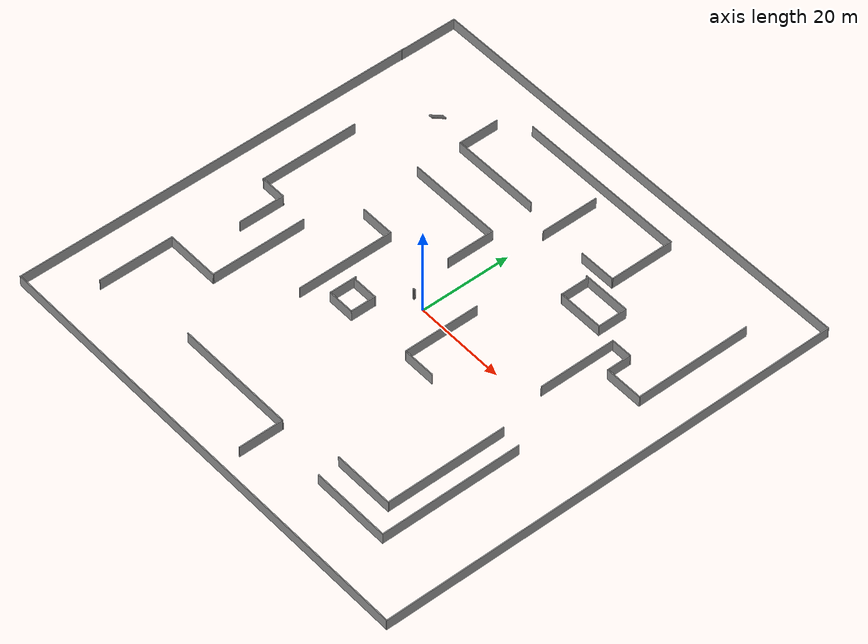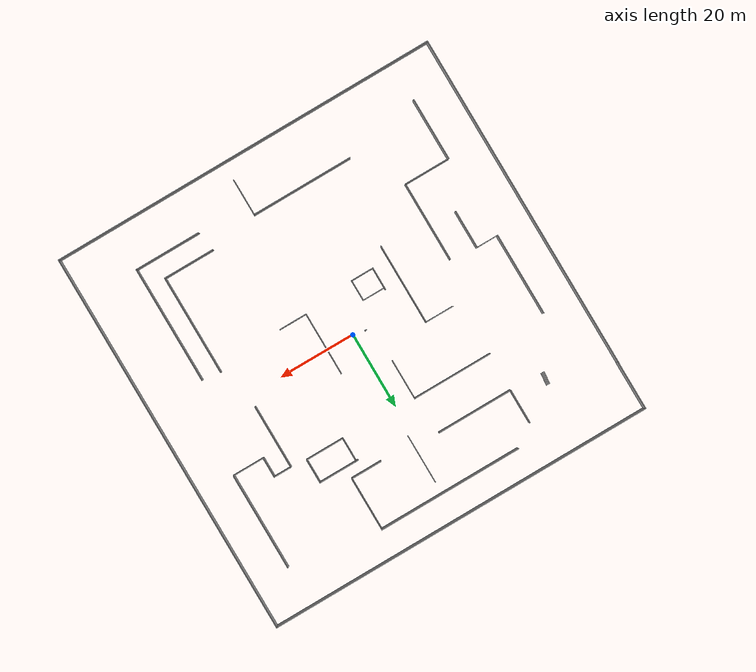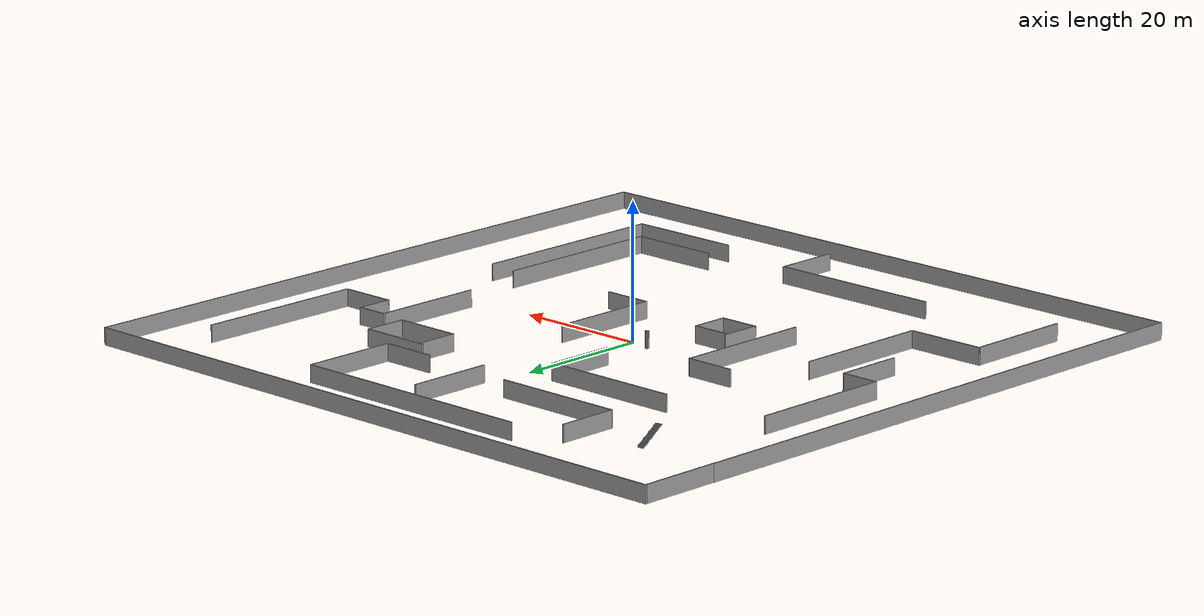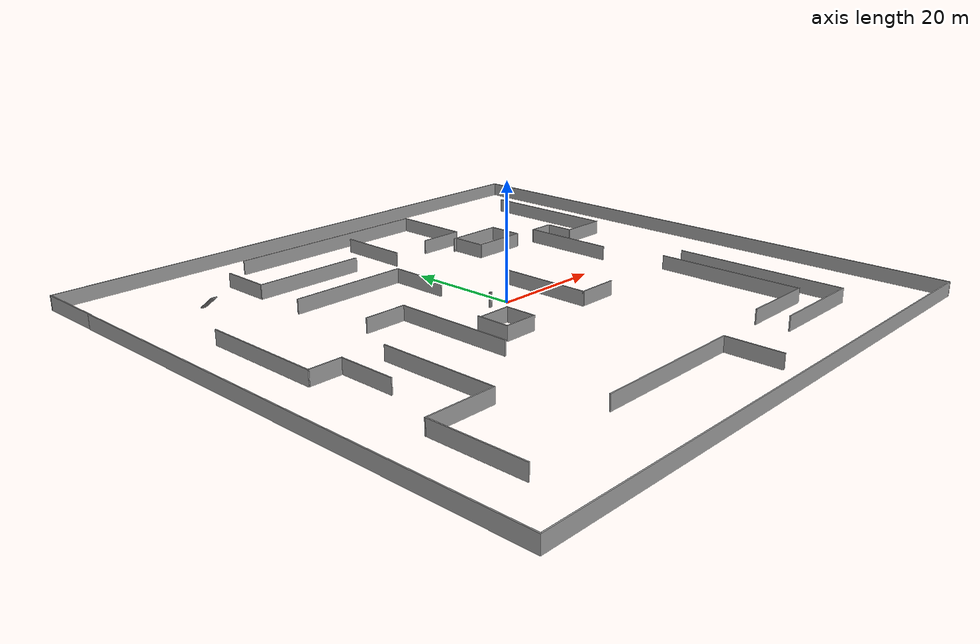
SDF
<?xml version='1.0'?>
<sdf version='1.4'>
  <model name='CustomWorld'>
    <link name='Stairs_0'>
      <visual name='Stairs_0_Visual_0'>
        <pose>-34.1146 34.008 0.083333 0 -0 0</pose>
        <geometry>
          <box>
            <size>1 0.233333 0.166667</size>
          </box>
        </geometry>
        <material>
          <script>
            <uri>file://media/materials/scripts/gazebo.material</uri>
            <name>Gazebo/Grey</name>
          </script>
        </material>
      </visual>
      <collision name='Stairs_0_Collision_0'>
        <geometry>
          <box>
            <size>1 0.233333 0.166667</size>
          </box>
        </geometry>
        <pose>-34.1146 34.008 0.083333 0 -0 0</pose>
      </collision>
      <visual name='Stairs_0_Visual_1'>
        <pose>-34.1146 33.7746 0.25 0 -0 0</pose>
        <geometry>
          <box>
            <size>1 0.233335 0.166668</size>
          </box>
        </geometry>
        <material>
          <script>
            <uri>file://media/materials/scripts/gazebo.material</uri>
            <name>Gazebo/Grey</name>
          </script>
        </material>
      </visual>
      <collision name='Stairs_0_Collision_1'>
        <geometry>
          <box>
            <size>1 0.233335 0.166668</size>
          </box>
        </geometry>
        <pose>-34.1146 33.7746 0.25 0 -0 0</pose>
      </collision>
      <visual name='Stairs_0_Visual_2'>
        <pose>-34.1146 33.5413 0.416667 0 -0 0</pose>
        <geometry>
          <box>
            <size>1 0.233335 0.166668</size>
          </box>
        </geometry>
        <material>
          <script>
            <uri>file://media/materials/scripts/gazebo.material</uri>
            <name>Gazebo/Grey</name>
          </script>
        </material>
      </visual>
      <collision name='Stairs_0_Collision_2'>
        <geometry>
          <box>
            <size>1 0.233335 0.166668</size>
          </box>
        </geometry>
        <pose>-34.1146 33.5413 0.416667 0 -0 0</pose>
      </collision>
      <visual name='Stairs_0_Visual_3'>
        <pose>-34.1146 33.308 0.583333 0 -0 0</pose>
        <geometry>
          <box>
            <size>1 0.233335 0.166668</size>
          </box>
        </geometry>
        <material>
          <script>
            <uri>file://media/materials/scripts/gazebo.material</uri>
            <name>Gazebo/Grey</name>
          </script>
        </material>
      </visual>
      <collision name='Stairs_0_Collision_3'>
        <geometry>
          <box>
            <size>1 0.233335 0.166668</size>
          </box>
        </geometry>
        <pose>-34.1146 33.308 0.583333 0 -0 0</pose>
      </collision>
      <visual name='Stairs_0_Visual_4'>
        <pose>-34.1146 33.0746 0.75 0 -0 0</pose>
        <geometry>
          <box>
            <size>1 0.233335 0.166668</size>
          </box>
        </geometry>
        <material>
          <script>
            <uri>file://media/materials/scripts/gazebo.material</uri>
            <name>Gazebo/Grey</name>
          </script>
        </material>
      </visual>
      <collision name='Stairs_0_Collision_4'>
        <geometry>
          <box>
            <size>1 0.233335 0.166668</size>
          </box>
        </geometry>
        <pose>-34.1146 33.0746 0.75 0 -0 0</pose>
      </collision>
      <visual name='Stairs_0_Visual_5'>
        <pose>-34.1146 32.8413 0.916667 0 -0 0</pose>
        <geometry>
          <box>
            <size>1 0.233335 0.166668</size>
          </box>
        </geometry>
        <material>
          <script>
            <uri>file://media/materials/scripts/gazebo.material</uri>
            <name>Gazebo/Grey</name>
          </script>
        </material>
      </visual>
      <collision name='Stairs_0_Collision_5'>
        <geometry>
          <box>
            <size>1 0.233335 0.166668</size>
          </box>
        </geometry>
        <pose>-34.1146 32.8413 0.916667 0 -0 0</pose>
      </collision>
      <visual name='Stairs_0_Visual_6'>
        <pose>-34.1146 32.608 1.08333 0 -0 0</pose>
        <geometry>
          <box>
            <size>1 0.233335 0.166668</size>
          </box>
        </geometry>
        <material>
          <script>
            <uri>file://media/materials/scripts/gazebo.material</uri>
            <name>Gazebo/Grey</name>
          </script>
        </material>
      </visual>
      <collision name='Stairs_0_Collision_6'>
        <geometry>
          <box>
            <size>1 0.233335 0.166668</size>
          </box>
        </geometry>
        <pose>-34.1146 32.608 1.08333 0 -0 0</pose>
      </collision>
      <visual name='Stairs_0_Visual_7'>
        <pose>-34.1146 32.3746 1.25 0 -0 0</pose>
        <geometry>
          <box>
            <size>1 0.233335 0.166668</size>
          </box>
        </geometry>
        <material>
          <script>
            <uri>file://media/materials/scripts/gazebo.material</uri>
            <name>Gazebo/Grey</name>
          </script>
        </material>
      </visual>
      <collision name='Stairs_0_Collision_7'>
        <geometry>
          <box>
            <size>1 0.233335 0.166668</size>
          </box>
        </geometry>
        <pose>-34.1146 32.3746 1.25 0 -0 0</pose>
      </collision>
      <visual name='Stairs_0_Visual_8'>
        <pose>-34.1146 32.1413 1.41667 0 -0 0</pose>
        <geometry>
          <box>
            <size>1 0.233335 0.166668</size>
          </box>
        </geometry>
        <material>
          <script>
            <uri>file://media/materials/scripts/gazebo.material</uri>
            <name>Gazebo/Grey</name>
          </script>
        </material>
      </visual>
      <collision name='Stairs_0_Collision_8'>
        <geometry>
          <box>
            <size>1 0.233335 0.166668</size>
          </box>
        </geometry>
        <pose>-34.1146 32.1413 1.41667 0 -0 0</pose>
      </collision>
      <visual name='Stairs_0_Visual_9'>
        <pose>-34.1146 31.908 1.58333 0 -0 0</pose>
        <geometry>
          <box>
            <size>1 0.233335 0.166668</size>
          </box>
        </geometry>
        <material>
          <script>
            <uri>file://media/materials/scripts/gazebo.material</uri>
            <name>Gazebo/Grey</name>
          </script>
        </material>
      </visual>
      <collision name='Stairs_0_Collision_9'>
        <geometry>
          <box>
            <size>1 0.233335 0.166668</size>
          </box>
        </geometry>
        <pose>-34.1146 31.908 1.58333 0 -0 0</pose>
      </collision>
      <visual name='Stairs_0_Visual_10'>
        <pose>-34.1146 31.6746 1.75 0 -0 0</pose>
        <geometry>
          <box>
            <size>1 0.233335 0.166668</size>
          </box>
        </geometry>
        <material>
          <script>
            <uri>file://media/materials/scripts/gazebo.material</uri>
            <name>Gazebo/Grey</name>
          </script>
        </material>
      </visual>
      <collision name='Stairs_0_Collision_10'>
        <geometry>
          <box>
            <size>1 0.233335 0.166668</size>
          </box>
        </geometry>
        <pose>-34.1146 31.6746 1.75 0 -0 0</pose>
      </collision>
      <visual name='Stairs_0_Visual_11'>
        <pose>-34.1146 31.4413 1.91667 0 -0 0</pose>
        <geometry>
          <box>
            <size>1 0.233335 0.166668</size>
          </box>
        </geometry>
        <material>
          <script>
            <uri>file://media/materials/scripts/gazebo.material</uri>
            <name>Gazebo/Grey</name>
          </script>
        </material>
      </visual>
      <collision name='Stairs_0_Collision_11'>
        <geometry>
          <box>
            <size>1 0.233335 0.166668</size>
          </box>
        </geometry>
        <pose>-34.1146 31.4413 1.91667 0 -0 0</pose>
      </collision>
      <visual name='Stairs_0_Visual_12'>
        <pose>-34.1146 31.208 2.08333 0 -0 0</pose>
        <geometry>
          <box>
            <size>1 0.233335 0.166668</size>
          </box>
        </geometry>
        <material>
          <script>
            <uri>file://media/materials/scripts/gazebo.material</uri>
            <name>Gazebo/Grey</name>
          </script>
        </material>
      </visual>
      <collision name='Stairs_0_Collision_12'>
        <geometry>
          <box>
            <size>1 0.233335 0.166668</size>
          </box>
        </geometry>
        <pose>-34.1146 31.208 2.08333 0 -0 0</pose>
      </collision>
      <visual name='Stairs_0_Visual_13'>
        <pose>-34.1146 30.9746 2.25 0 -0 0</pose>
        <geometry>
          <box>
            <size>1 0.233335 0.166668</size>
          </box>
        </geometry>
        <material>
          <script>
            <uri>file://media/materials/scripts/gazebo.material</uri>
            <name>Gazebo/Grey</name>
          </script>
        </material>
      </visual>
      <collision name='Stairs_0_Collision_13'>
        <geometry>
          <box>
            <size>1 0.233335 0.166668</size>
          </box>
        </geometry>
        <pose>-34.1146 30.9746 2.25 0 -0 0</pose>
      </collision>
      <visual name='Stairs_0_Visual_14'>
        <pose>-34.1146 30.7413 2.41667 0 -0 0</pose>
        <geometry>
          <box>
            <size>1 0.233335 0.166668</size>
          </box>
        </geometry>
        <material>
          <script>
            <uri>file://media/materials/scripts/gazebo.material</uri>
            <name>Gazebo/Grey</name>
          </script>
        </material>
      </visual>
      <collision name='Stairs_0_Collision_14'>
        <geometry>
          <box>
            <size>1 0.233335 0.166668</size>
          </box>
        </geometry>
        <pose>-34.1146 30.7413 2.41667 0 -0 0</pose>
      </collision>
    </link>
    <link name='Wall_13'>
      <collision name='Wall_13_Collision'>
        <geometry>
          <box>
            <size>89.3438 0.2 2.5</size>
          </box>
        </geometry>
        <pose>0 0 1.25 0 -0 0</pose>
      </collision>
      <visual name='Wall_13_Visual'>
        <pose>0 0 1.25 0 -0 0</pose>
        <geometry>
          <box>
            <size>89.3438 0.2 2.5</size>
          </box>
        </geometry>
        <material>
          <script>
            <uri>file://media/materials/scripts/gazebo.material</uri>
            <name>Gazebo/Grey</name>
          </script>
        </material>
      </visual>
      <velocity_decay>
        <linear>0</linear>
        <angular>0</angular>
      </velocity_decay>
      <pose>-50.8449 -6.378 0 0 0 -1.5708</pose>
    </link>
    <link name='Wall_14'>
      <collision name='Wall_14_Collision'>
        <geometry>
          <box>
            <size>102.055 0.2 2.5</size>
          </box>
        </geometry>
        <pose>0 0 1.25 0 -0 0</pose>
      </collision>
      <visual name='Wall_14_Visual'>
        <pose>0 0 1.25 0 -0 0</pose>
        <geometry>
          <box>
            <size>102.055 0.2 2.5</size>
          </box>
        </geometry>
        <material>
          <script>
            <uri>file://media/materials/scripts/gazebo.material</uri>
            <name>Gazebo/Grey</name>
          </script>
        </material>
      </visual>
      <velocity_decay>
        <linear>0</linear>
        <angular>0</angular>
      </velocity_decay>
      <pose>0.082804 -50.9499 0 0 -0 0</pose>
    </link>
    <link name='Wall_15'>
      <collision name='Wall_15_Collision'>
        <geometry>
          <box>
            <size>101.673 0.2 2.5</size>
          </box>
        </geometry>
        <pose>0 0 1.25 0 -0 0</pose>
      </collision>
      <visual name='Wall_15_Visual'>
        <pose>0 0 1.25 0 -0 0</pose>
        <geometry>
          <box>
            <size>101.673 0.2 2.5</size>
          </box>
        </geometry>
        <material>
          <script>
            <uri>file://media/materials/scripts/gazebo.material</uri>
            <name>Gazebo/Grey</name>
          </script>
        </material>
      </visual>
      <velocity_decay>
        <linear>0</linear>
        <angular>0</angular>
      </velocity_decay>
      <pose>51.0105 -0.213646 0 0 -0 1.5708</pose>
    </link>
    <link name='Wall_16'>
      <collision name='Wall_16_Collision'>
        <geometry>
          <box>
            <size>102 0.2 2.5</size>
          </box>
        </geometry>
        <pose>0 0 1.25 0 -0 0</pose>
      </collision>
      <visual name='Wall_16_Visual'>
        <pose>0 0 1.25 0 -0 0</pose>
        <geometry>
          <box>
            <size>102 0.2 2.5</size>
          </box>
        </geometry>
        <material>
          <script>
            <uri>file://media/materials/scripts/gazebo.material</uri>
            <name>Gazebo/Grey</name>
          </script>
        </material>
      </visual>
      <velocity_decay>
        <linear>0</linear>
        <angular>0</angular>
      </velocity_decay>
      <pose>0.110507 50.5226 0 0 -0 3.14159</pose>
    </link>
    <link name='Wall_17'>
      <collision name='Wall_17_Collision'>
        <geometry>
          <box>
            <size>12.9537 0.2 2.5</size>
          </box>
        </geometry>
        <pose>0 0 1.25 0 -0 0</pose>
      </collision>
      <visual name='Wall_17_Visual'>
        <pose>0 0 1.25 0 -0 0</pose>
        <geometry>
          <box>
            <size>12.9537 0.2 2.5</size>
          </box>
        </geometry>
        <material>
          <script>
            <uri>file://media/materials/scripts/gazebo.material</uri>
            <name>Gazebo/Grey</name>
          </script>
        </material>
      </visual>
      <velocity_decay>
        <linear>0</linear>
        <angular>0</angular>
      </velocity_decay>
      <pose>-50.7895 44.1457 0 0 0 -1.5708</pose>
    </link>
    <link name='Wall_19'>
      <collision name='Wall_19_Collision'>
        <geometry>
          <box>
            <size>9.07435 0.2 2.5</size>
          </box>
        </geometry>
        <pose>0 0 1.25 0 -0 0</pose>
      </collision>
      <visual name='Wall_19_Visual'>
        <pose>0 0 1.25 0 -0 0</pose>
        <geometry>
          <box>
            <size>9.07435 0.2 2.5</size>
          </box>
        </geometry>
        <material>
          <script>
            <uri>file://media/materials/scripts/gazebo.material</uri>
            <name>Gazebo/Grey</name>
          </script>
        </material>
      </visual>
      <velocity_decay>
        <linear>0</linear>
        <angular>0</angular>
      </velocity_decay>
      <pose>-25.4928 34.9108 0 0 0 -1.5708</pose>
    </link>
    <link name='Wall_20'>
      <collision name='Wall_20_Collision'>
        <geometry>
          <box>
            <size>19.8967 0.2 2.5</size>
          </box>
        </geometry>
        <pose>0 0 1.25 0 -0 0</pose>
      </collision>
      <visual name='Wall_20_Visual'>
        <pose>0 0 1.25 0 -0 0</pose>
        <geometry>
          <box>
            <size>19.8967 0.2 2.5</size>
          </box>
        </geometry>
        <material>
          <script>
            <uri>file://media/materials/scripts/gazebo.material</uri>
            <name>Gazebo/Grey</name>
          </script>
        </material>
      </visual>
      <velocity_decay>
        <linear>0</linear>
        <angular>0</angular>
      </velocity_decay>
      <pose>-15.6445 30.4736 0 0 -0 0</pose>
    </link>
    <link name='Wall_22'>
      <collision name='Wall_22_Collision'>
        <geometry>
          <box>
            <size>20.979 0.2 2.5</size>
          </box>
        </geometry>
        <pose>0 0 1.25 0 -0 0</pose>
      </collision>
      <visual name='Wall_22_Visual'>
        <pose>0 0 1.25 0 -0 0</pose>
        <geometry>
          <box>
            <size>20.979 0.2 2.5</size>
          </box>
        </geometry>
        <material>
          <script>
            <uri>file://media/materials/scripts/gazebo.material</uri>
            <name>Gazebo/Grey</name>
          </script>
        </material>
      </visual>
      <velocity_decay>
        <linear>0</linear>
        <angular>0</angular>
      </velocity_decay>
      <pose>-15.3198 20.5171 0 0 -0 0</pose>
    </link>
    <link name='Wall_23'>
      <collision name='Wall_23_Collision'>
        <geometry>
          <box>
            <size>10.5895 0.2 2.5</size>
          </box>
        </geometry>
        <pose>0 0 1.25 0 -0 0</pose>
      </collision>
      <visual name='Wall_23_Visual'>
        <pose>0 0 1.25 0 -0 0</pose>
        <geometry>
          <box>
            <size>10.5895 0.2 2.5</size>
          </box>
        </geometry>
        <material>
          <script>
            <uri>file://media/materials/scripts/gazebo.material</uri>
            <name>Gazebo/Grey</name>
          </script>
        </material>
      </visual>
      <velocity_decay>
        <linear>0</linear>
        <angular>0</angular>
      </velocity_decay>
      <pose>-4.93032 15.3223 0 0 0 -1.5708</pose>
    </link>
    <link name='Wall_25'>
      <collision name='Wall_25_Collision'>
        <geometry>
          <box>
            <size>0.349931 0.2 2.5</size>
          </box>
        </geometry>
        <pose>0 0 1.25 0 -0 0</pose>
      </collision>
      <visual name='Wall_25_Visual'>
        <pose>0 0 1.25 0 -0 0</pose>
        <geometry>
          <box>
            <size>0.349931 0.2 2.5</size>
          </box>
        </geometry>
        <material>
          <script>
            <uri>file://media/materials/scripts/gazebo.material</uri>
            <name>Gazebo/Grey</name>
          </script>
        </material>
      </visual>
      <velocity_decay>
        <linear>0</linear>
        <angular>0</angular>
      </velocity_decay>
      <pose>-3.33778 0.644917 0 0 0 -1.5708</pose>
    </link>
    <link name='Wall_26'>
      <collision name='Wall_26_Collision'>
        <geometry>
          <box>
            <size>0.499863 0.2 2.5</size>
          </box>
        </geometry>
        <pose>0 0 1.25 0 -0 0</pose>
      </collision>
      <visual name='Wall_26_Visual'>
        <pose>0 0 1.25 0 -0 0</pose>
        <geometry>
          <box>
            <size>0.499863 0.2 2.5</size>
          </box>
        </geometry>
        <material>
          <script>
            <uri>file://media/materials/scripts/gazebo.material</uri>
            <name>Gazebo/Grey</name>
          </script>
        </material>
      </visual>
      <velocity_decay>
        <linear>0</linear>
        <angular>0</angular>
      </velocity_decay>
      <pose>-3.18784 0.569952 0 0 -0 0</pose>
    </link>
    <link name='Wall_27'>
      <collision name='Wall_27_Collision'>
        <geometry>
          <box>
            <size>0.35116 0.2 2.5</size>
          </box>
        </geometry>
        <pose>0 0 1.25 0 -0 0</pose>
      </collision>
      <visual name='Wall_27_Visual'>
        <pose>0 0 1.25 0 -0 0</pose>
        <geometry>
          <box>
            <size>0.35116 0.2 2.5</size>
          </box>
        </geometry>
        <material>
          <script>
            <uri>file://media/materials/scripts/gazebo.material</uri>
            <name>Gazebo/Grey</name>
          </script>
        </material>
      </visual>
      <velocity_decay>
        <linear>0</linear>
        <angular>0</angular>
      </velocity_decay>
      <pose>-3.03791 0.645532 0 0 -0 1.5708</pose>
    </link>
    <link name='Wall_28'>
      <collision name='Wall_28_Collision'>
        <geometry>
          <box>
            <size>0.499865 0.2 2.5</size>
          </box>
        </geometry>
        <pose>0 0 1.25 0 -0 0</pose>
      </collision>
      <visual name='Wall_28_Visual'>
        <pose>0 0 1.25 0 -0 0</pose>
        <geometry>
          <box>
            <size>0.499865 0.2 2.5</size>
          </box>
        </geometry>
        <material>
          <script>
            <uri>file://media/materials/scripts/gazebo.material</uri>
            <name>Gazebo/Grey</name>
          </script>
        </material>
      </visual>
      <velocity_decay>
        <linear>0</linear>
        <angular>0</angular>
      </velocity_decay>
      <pose>-3.18784 0.720497 0 0 0 -3.13749</pose>
    </link>
    <link name='Wall_30'>
      <collision name='Wall_30_Collision'>
        <geometry>
          <box>
            <size>6.47698 0.2 2.5</size>
          </box>
        </geometry>
        <pose>0 0 1.25 0 -0 0</pose>
      </collision>
      <visual name='Wall_30_Visual'>
        <pose>0 0 1.25 0 -0 0</pose>
        <geometry>
          <box>
            <size>6.47698 0.2 2.5</size>
          </box>
        </geometry>
        <material>
          <script>
            <uri>file://media/materials/scripts/gazebo.material</uri>
            <name>Gazebo/Grey</name>
          </script>
        </material>
      </visual>
      <velocity_decay>
        <linear>0</linear>
        <angular>0</angular>
      </velocity_decay>
      <pose>14.6645 23.0829 0 0 0 -1.5708</pose>
    </link>
    <link name='Wall_31'>
      <collision name='Wall_31_Collision'>
        <geometry>
          <box>
            <size>10.1566 0.2 2.5</size>
          </box>
        </geometry>
        <pose>0 0 1.25 0 -0 0</pose>
      </collision>
      <visual name='Wall_31_Visual'>
        <pose>0 0 1.25 0 -0 0</pose>
        <geometry>
          <box>
            <size>10.1566 0.2 2.5</size>
          </box>
        </geometry>
        <material>
          <script>
            <uri>file://media/materials/scripts/gazebo.material</uri>
            <name>Gazebo/Grey</name>
          </script>
        </material>
      </visual>
      <velocity_decay>
        <linear>0</linear>
        <angular>0</angular>
      </velocity_decay>
      <pose>19.6428 19.9445 0 0 -0 0</pose>
    </link>
    <link name='Wall_32'>
      <collision name='Wall_32_Collision'>
        <geometry>
          <box>
            <size>6.47698 0.2 2.5</size>
          </box>
        </geometry>
        <pose>0 0 1.25 0 -0 0</pose>
      </collision>
      <visual name='Wall_32_Visual'>
        <pose>0 0 1.25 0 -0 0</pose>
        <geometry>
          <box>
            <size>6.47698 0.2 2.5</size>
          </box>
        </geometry>
        <material>
          <script>
            <uri>file://media/materials/scripts/gazebo.material</uri>
            <name>Gazebo/Grey</name>
          </script>
        </material>
      </visual>
      <velocity_decay>
        <linear>0</linear>
        <angular>0</angular>
      </velocity_decay>
      <pose>24.6211 23.0829 0 0 -0 1.5708</pose>
    </link>
    <link name='Wall_33'>
      <collision name='Wall_33_Collision'>
        <geometry>
          <box>
            <size>10.5895 0.2 2.5</size>
          </box>
        </geometry>
        <pose>0 0 1.25 0 -0 0</pose>
      </collision>
      <visual name='Wall_33_Visual'>
        <pose>0 0 1.25 0 -0 0</pose>
        <geometry>
          <box>
            <size>10.5895 0.2 2.5</size>
          </box>
        </geometry>
        <material>
          <script>
            <uri>file://media/materials/scripts/gazebo.material</uri>
            <name>Gazebo/Grey</name>
          </script>
        </material>
      </visual>
      <velocity_decay>
        <linear>0</linear>
        <angular>0</angular>
      </velocity_decay>
      <pose>19.4263 26.2214 0 0 -0 3.14159</pose>
    </link>
    <link name='Wall_35'>
      <collision name='Wall_35_Collision'>
        <geometry>
          <box>
            <size>20.979 0.2 2.5</size>
          </box>
        </geometry>
        <pose>0 0 1.25 0 -0 0</pose>
      </collision>
      <visual name='Wall_35_Visual'>
        <pose>0 0 1.25 0 -0 0</pose>
        <geometry>
          <box>
            <size>20.979 0.2 2.5</size>
          </box>
        </geometry>
        <material>
          <script>
            <uri>file://media/materials/scripts/gazebo.material</uri>
            <name>Gazebo/Grey</name>
          </script>
        </material>
      </visual>
      <velocity_decay>
        <linear>0</linear>
        <angular>0</angular>
      </velocity_decay>
      <pose>-29.0579 -14.0378 0 0 0 -1.5708</pose>
    </link>
    <link name='Wall_36'>
      <collision name='Wall_36_Collision'>
        <geometry>
          <box>
            <size>12.1046 0.2 2.5</size>
          </box>
        </geometry>
        <pose>0 0 1.25 0 -0 0</pose>
      </collision>
      <visual name='Wall_36_Visual'>
        <pose>0 0 1.25 0 -0 0</pose>
        <geometry>
          <box>
            <size>12.1046 0.2 2.5</size>
          </box>
        </geometry>
        <material>
          <script>
            <uri>file://media/materials/scripts/gazebo.material</uri>
            <name>Gazebo/Grey</name>
          </script>
        </material>
      </visual>
      <velocity_decay>
        <linear>0</linear>
        <angular>0</angular>
      </velocity_decay>
      <pose>-35.0102 -24.4273 0 0 -0 3.14159</pose>
    </link>
    <link name='Wall_37'>
      <collision name='Wall_37_Collision'>
        <geometry>
          <box>
            <size>16.4336 0.2 2.5</size>
          </box>
        </geometry>
        <pose>0 0 1.25 0 -0 0</pose>
      </collision>
      <visual name='Wall_37_Visual'>
        <pose>0 0 1.25 0 -0 0</pose>
        <geometry>
          <box>
            <size>16.4336 0.2 2.5</size>
          </box>
        </geometry>
        <material>
          <script>
            <uri>file://media/materials/scripts/gazebo.material</uri>
            <name>Gazebo/Grey</name>
          </script>
        </material>
      </visual>
      <velocity_decay>
        <linear>0</linear>
        <angular>0</angular>
      </velocity_decay>
      <pose>-40.9625 -32.5441 0 0 0 -1.5708</pose>
    </link>
    <link name='Wall_39'>
      <collision name='Wall_39_Collision'>
        <geometry>
          <box>
            <size>21.6283 0.2 2.5</size>
          </box>
        </geometry>
        <pose>0 0 1.25 0 -0 0</pose>
      </collision>
      <visual name='Wall_39_Visual'>
        <pose>0 0 1.25 0 -0 0</pose>
        <geometry>
          <box>
            <size>21.6283 0.2 2.5</size>
          </box>
        </geometry>
        <material>
          <script>
            <uri>file://media/materials/scripts/gazebo.material</uri>
            <name>Gazebo/Grey</name>
          </script>
        </material>
      </visual>
      <velocity_decay>
        <linear>0</linear>
        <angular>0</angular>
      </velocity_decay>
      <pose>-41.6118 7.93162 0 0 0 -1.5708</pose>
    </link>
    <link name='Wall_40'>
      <collision name='Wall_40_Collision'>
        <geometry>
          <box>
            <size>5.82763 0.2 2.5</size>
          </box>
        </geometry>
        <pose>0 0 1.25 0 -0 0</pose>
      </collision>
      <visual name='Wall_40_Visual'>
        <pose>0 0 1.25 0 -0 0</pose>
        <geometry>
          <box>
            <size>5.82763 0.2 2.5</size>
          </box>
        </geometry>
        <material>
          <script>
            <uri>file://media/materials/scripts/gazebo.material</uri>
            <name>Gazebo/Grey</name>
          </script>
        </material>
      </visual>
      <velocity_decay>
        <linear>0</linear>
        <angular>0</angular>
      </velocity_decay>
      <pose>-38.798 -2.78253 0 0 -0 0</pose>
    </link>
    <link name='Wall_41'>
      <collision name='Wall_41_Collision'>
        <geometry>
          <box>
            <size>10.1566 0.2 2.5</size>
          </box>
        </geometry>
        <pose>0 0 1.25 0 -0 0</pose>
      </collision>
      <visual name='Wall_41_Visual'>
        <pose>0 0 1.25 0 -0 0</pose>
        <geometry>
          <box>
            <size>10.1566 0.2 2.5</size>
          </box>
        </geometry>
        <material>
          <script>
            <uri>file://media/materials/scripts/gazebo.material</uri>
            <name>Gazebo/Grey</name>
          </script>
        </material>
      </visual>
      <velocity_decay>
        <linear>0</linear>
        <angular>0</angular>
      </velocity_decay>
      <pose>-35.9842 -7.76082 0 0 0 -1.5708</pose>
    </link>
    <link name='Wall_43'>
      <collision name='Wall_43_Collision'>
        <geometry>
          <box>
            <size>25.5244 0.2 2.5</size>
          </box>
        </geometry>
        <pose>0 0 1.25 0 -0 0</pose>
      </collision>
      <visual name='Wall_43_Visual'>
        <pose>0 0 1.25 0 -0 0</pose>
        <geometry>
          <box>
            <size>25.5244 0.2 2.5</size>
          </box>
        </geometry>
        <material>
          <script>
            <uri>file://media/materials/scripts/gazebo.material</uri>
            <name>Gazebo/Grey</name>
          </script>
        </material>
      </visual>
      <velocity_decay>
        <linear>0</linear>
        <angular>0</angular>
      </velocity_decay>
      <pose>41.504 26.979 0 0 0 -1.5708</pose>
    </link>
    <link name='Wall_44'>
      <collision name='Wall_44_Collision'>
        <geometry>
          <box>
            <size>8.425 0.2 2.5</size>
          </box>
        </geometry>
        <pose>0 0 1.25 0 -0 0</pose>
      </collision>
      <visual name='Wall_44_Visual'>
        <pose>0 0 1.25 0 -0 0</pose>
        <geometry>
          <box>
            <size>8.425 0.2 2.5</size>
          </box>
        </geometry>
        <material>
          <script>
            <uri>file://media/materials/scripts/gazebo.material</uri>
            <name>Gazebo/Grey</name>
          </script>
        </material>
      </visual>
      <velocity_decay>
        <linear>0</linear>
        <angular>0</angular>
      </velocity_decay>
      <pose>37.3915 14.3168 0 0 -0 3.14159</pose>
    </link>
    <link name='Wall_45'>
      <collision name='Wall_45_Collision'>
        <geometry>
          <box>
            <size>5.39474 0.2 2.5</size>
          </box>
        </geometry>
        <pose>0 0 1.25 0 -0 0</pose>
      </collision>
      <visual name='Wall_45_Visual'>
        <pose>0 0 1.25 0 -0 0</pose>
        <geometry>
          <box>
            <size>5.39474 0.2 2.5</size>
          </box>
        </geometry>
        <material>
          <script>
            <uri>file://media/materials/scripts/gazebo.material</uri>
            <name>Gazebo/Grey</name>
          </script>
        </material>
      </visual>
      <velocity_decay>
        <linear>0</linear>
        <angular>0</angular>
      </velocity_decay>
      <pose>33.279 16.9142 0 0 -0 1.5708</pose>
    </link>
    <link name='Wall_46'>
      <collision name='Wall_46_Collision'>
        <geometry>
          <box>
            <size>4.7454 0.2 2.5</size>
          </box>
        </geometry>
        <pose>0 0 1.25 0 -0 0</pose>
      </collision>
      <visual name='Wall_46_Visual'>
        <pose>0 0 1.25 0 -0 0</pose>
        <geometry>
          <box>
            <size>4.7454 0.2 2.5</size>
          </box>
        </geometry>
        <material>
          <script>
            <uri>file://media/materials/scripts/gazebo.material</uri>
            <name>Gazebo/Grey</name>
          </script>
        </material>
      </visual>
      <velocity_decay>
        <linear>0</linear>
        <angular>0</angular>
      </velocity_decay>
      <pose>31.0063 19.5116 0 0 -0 3.14159</pose>
    </link>
    <link name='Wall_47'>
      <collision name='Wall_47_Collision'>
        <geometry>
          <box>
            <size>16.8665 0.2 2.5</size>
          </box>
        </geometry>
        <pose>0 0 1.25 0 -0 0</pose>
      </collision>
      <visual name='Wall_47_Visual'>
        <pose>0 0 1.25 0 -0 0</pose>
        <geometry>
          <box>
            <size>16.8665 0.2 2.5</size>
          </box>
        </geometry>
        <material>
          <script>
            <uri>file://media/materials/scripts/gazebo.material</uri>
            <name>Gazebo/Grey</name>
          </script>
        </material>
      </visual>
      <velocity_decay>
        <linear>0</linear>
        <angular>0</angular>
      </velocity_decay>
      <pose>28.7336 11.1783 0 0 0 -1.5708</pose>
    </link>
    <link name='Wall_49'>
      <collision name='Wall_49_Collision'>
        <geometry>
          <box>
            <size>37.8619 0.2 2.5</size>
          </box>
        </geometry>
        <pose>0 0 1.25 0 -0 0</pose>
      </collision>
      <visual name='Wall_49_Visual'>
        <pose>0 0 1.25 0 -0 0</pose>
        <geometry>
          <box>
            <size>37.8619 0.2 2.5</size>
          </box>
        </geometry>
        <material>
          <script>
            <uri>file://media/materials/scripts/gazebo.material</uri>
            <name>Gazebo/Grey</name>
          </script>
        </material>
      </visual>
      <velocity_decay>
        <linear>0</linear>
        <angular>0</angular>
      </velocity_decay>
      <pose>-1.13617 43.3208 0 0 -0 0</pose>
    </link>
    <link name='Wall_50'>
      <collision name='Wall_50_Collision'>
        <geometry>
          <box>
            <size>14.2691 0.2 2.5</size>
          </box>
        </geometry>
        <pose>0 0 1.25 0 -0 0</pose>
      </collision>
      <visual name='Wall_50_Visual'>
        <pose>0 0 1.25 0 -0 0</pose>
        <geometry>
          <box>
            <size>14.2691 0.2 2.5</size>
          </box>
        </geometry>
        <material>
          <script>
            <uri>file://media/materials/scripts/gazebo.material</uri>
            <name>Gazebo/Grey</name>
          </script>
        </material>
      </visual>
      <velocity_decay>
        <linear>0</linear>
        <angular>0</angular>
      </velocity_decay>
      <pose>17.6948 36.2862 0 0 0 -1.5708</pose>
    </link>
    <link name='Wall_51'>
      <collision name='Wall_51_Collision'>
        <geometry>
          <box>
            <size>8.20856 0.2 2.5</size>
          </box>
        </geometry>
        <pose>0 0 1.25 0 -0 0</pose>
      </collision>
      <visual name='Wall_51_Visual'>
        <pose>0 0 1.25 0 -0 0</pose>
        <geometry>
          <box>
            <size>8.20856 0.2 2.5</size>
          </box>
        </geometry>
        <material>
          <script>
            <uri>file://media/materials/scripts/gazebo.material</uri>
            <name>Gazebo/Grey</name>
          </script>
        </material>
      </visual>
      <velocity_decay>
        <linear>0</linear>
        <angular>0</angular>
      </velocity_decay>
      <pose>13.6905 29.2517 0 0 -0 3.14159</pose>
    </link>
    <link name='Wall_53'>
      <collision name='Wall_53_Collision'>
        <geometry>
          <box>
            <size>12.754 0.2 2.5</size>
          </box>
        </geometry>
        <pose>0 0 1.25 0 -0 0</pose>
      </collision>
      <visual name='Wall_53_Visual'>
        <pose>0 0 1.25 0 -0 0</pose>
        <geometry>
          <box>
            <size>12.754 0.2 2.5</size>
          </box>
        </geometry>
        <material>
          <script>
            <uri>file://media/materials/scripts/gazebo.material</uri>
            <name>Gazebo/Grey</name>
          </script>
        </material>
      </visual>
      <velocity_decay>
        <linear>0</linear>
        <angular>0</angular>
      </velocity_decay>
      <pose>1.02831 33.7971 0 0 0 -1.5708</pose>
    </link>
    <link name='Wall_55'>
      <collision name='Wall_55_Collision'>
        <geometry>
          <box>
            <size>6.04408 0.2 2.5</size>
          </box>
        </geometry>
        <pose>0 0 1.25 0 -0 0</pose>
      </collision>
      <visual name='Wall_55_Visual'>
        <pose>0 0 1.25 0 -0 0</pose>
        <geometry>
          <box>
            <size>6.04408 0.2 2.5</size>
          </box>
        </geometry>
        <material>
          <script>
            <uri>file://media/materials/scripts/gazebo.material</uri>
            <name>Gazebo/Grey</name>
          </script>
        </material>
      </visual>
      <velocity_decay>
        <linear>0</linear>
        <angular>0</angular>
      </velocity_decay>
      <pose>-12.175 -8.30194 0 0 0 -1.5708</pose>
    </link>
    <link name='Wall_56'>
      <collision name='Wall_56_Collision'>
        <geometry>
          <box>
            <size>6.04408 0.2 2.5</size>
          </box>
        </geometry>
        <pose>0 0 1.25 0 -0 0</pose>
      </collision>
      <visual name='Wall_56_Visual'>
        <pose>0 0 1.25 0 -0 0</pose>
        <geometry>
          <box>
            <size>6.04408 0.2 2.5</size>
          </box>
        </geometry>
        <material>
          <script>
            <uri>file://media/materials/scripts/gazebo.material</uri>
            <name>Gazebo/Grey</name>
          </script>
        </material>
      </visual>
      <velocity_decay>
        <linear>0</linear>
        <angular>0</angular>
      </velocity_decay>
      <pose>-9.25295 -11.224 0 0 -0 0</pose>
    </link>
    <link name='Wall_57'>
      <collision name='Wall_57_Collision'>
        <geometry>
          <box>
            <size>5.61119 0.2 2.5</size>
          </box>
        </geometry>
        <pose>0 0 1.25 0 -0 0</pose>
      </collision>
      <visual name='Wall_57_Visual'>
        <pose>0 0 1.25 0 -0 0</pose>
        <geometry>
          <box>
            <size>5.61119 0.2 2.5</size>
          </box>
        </geometry>
        <material>
          <script>
            <uri>file://media/materials/scripts/gazebo.material</uri>
            <name>Gazebo/Grey</name>
          </script>
        </material>
      </visual>
      <velocity_decay>
        <linear>0</linear>
        <angular>0</angular>
      </velocity_decay>
      <pose>-6.33091 -8.51838 0 0 -0 1.5708</pose>
    </link>
    <link name='Wall_58'>
      <collision name='Wall_58_Collision'>
        <geometry>
          <box>
            <size>5.82763 0.2 2.5</size>
          </box>
        </geometry>
        <pose>0 0 1.25 0 -0 0</pose>
      </collision>
      <visual name='Wall_58_Visual'>
        <pose>0 0 1.25 0 -0 0</pose>
        <geometry>
          <box>
            <size>5.82763 0.2 2.5</size>
          </box>
        </geometry>
        <material>
          <script>
            <uri>file://media/materials/scripts/gazebo.material</uri>
            <name>Gazebo/Grey</name>
          </script>
        </material>
      </visual>
      <velocity_decay>
        <linear>0</linear>
        <angular>0</angular>
      </velocity_decay>
      <pose>-9.14472 -5.81279 0 0 -0 3.14159</pose>
    </link>
    <link name='Wall_60'>
      <collision name='Wall_60_Collision'>
        <geometry>
          <box>
            <size>26.1737 0.2 2.5</size>
          </box>
        </geometry>
        <pose>0 0 1.25 0 -0 0</pose>
      </collision>
      <visual name='Wall_60_Visual'>
        <pose>0 0 1.25 0 -0 0</pose>
        <geometry>
          <box>
            <size>26.1737 0.2 2.5</size>
          </box>
        </geometry>
        <material>
          <script>
            <uri>file://media/materials/scripts/gazebo.material</uri>
            <name>Gazebo/Grey</name>
          </script>
        </material>
      </visual>
      <velocity_decay>
        <linear>0</linear>
        <angular>0</angular>
      </velocity_decay>
      <pose>31.5474 -21.397 0 0 0 -1.5708</pose>
    </link>
    <link name='Wall_61'>
      <collision name='Wall_61_Collision'>
        <geometry>
          <box>
            <size>13.4033 0.2 2.5</size>
          </box>
        </geometry>
        <pose>0 0 1.25 0 -0 0</pose>
      </collision>
      <visual name='Wall_61_Visual'>
        <pose>0 0 1.25 0 -0 0</pose>
        <geometry>
          <box>
            <size>13.4033 0.2 2.5</size>
          </box>
        </geometry>
        <material>
          <script>
            <uri>file://media/materials/scripts/gazebo.material</uri>
            <name>Gazebo/Grey</name>
          </script>
        </material>
      </visual>
      <velocity_decay>
        <linear>0</linear>
        <angular>0</angular>
      </velocity_decay>
      <pose>24.9458 -34.3839 0 0 -0 3.14159</pose>
    </link>
    <link name='Wall_63'>
      <collision name='Wall_63_Collision'>
        <geometry>
          <box>
            <size>17.2993 0.2 2.5</size>
          </box>
        </geometry>
        <pose>0 0 1.25 0 -0 0</pose>
      </collision>
      <visual name='Wall_63_Visual'>
        <pose>0 0 1.25 0 -0 0</pose>
        <geometry>
          <box>
            <size>17.2993 0.2 2.5</size>
          </box>
        </geometry>
        <material>
          <script>
            <uri>file://media/materials/scripts/gazebo.material</uri>
            <name>Gazebo/Grey</name>
          </script>
        </material>
      </visual>
      <velocity_decay>
        <linear>0</linear>
        <angular>0</angular>
      </velocity_decay>
      <pose>27.7596 -39.5786 0 0 -0 0</pose>
    </link>
    <link name='Wall_64'>
      <collision name='Wall_64_Collision'>
        <geometry>
          <box>
            <size>30.7191 0.2 2.5</size>
          </box>
        </geometry>
        <pose>0 0 1.25 0 -0 0</pose>
      </collision>
      <visual name='Wall_64_Visual'>
        <pose>0 0 1.25 0 -0 0</pose>
        <geometry>
          <box>
            <size>30.7191 0.2 2.5</size>
          </box>
        </geometry>
        <material>
          <script>
            <uri>file://media/materials/scripts/gazebo.material</uri>
            <name>Gazebo/Grey</name>
          </script>
        </material>
      </visual>
      <velocity_decay>
        <linear>0</linear>
        <angular>0</angular>
      </velocity_decay>
      <pose>36.3092 -24.319 0 0 -0 1.5708</pose>
    </link>
    <link name='Wall_66'>
      <collision name='Wall_66_Collision'>
        <geometry>
          <box>
            <size>26.6066 0.2 2.5</size>
          </box>
        </geometry>
        <pose>0 0 1.25 0 -0 0</pose>
      </collision>
      <visual name='Wall_66_Visual'>
        <pose>0 0 1.25 0 -0 0</pose>
        <geometry>
          <box>
            <size>26.6066 0.2 2.5</size>
          </box>
        </geometry>
        <material>
          <script>
            <uri>file://media/materials/scripts/gazebo.material</uri>
            <name>Gazebo/Grey</name>
          </script>
        </material>
      </visual>
      <velocity_decay>
        <linear>0</linear>
        <angular>0</angular>
      </velocity_decay>
      <pose>-7.62959 -36.5483 0 0 -0 0</pose>
    </link>
    <link name='Wall_67'>
      <collision name='Wall_67_Collision'>
        <geometry>
          <box>
            <size>9.72369 0.2 2.5</size>
          </box>
        </geometry>
        <pose>0 0 1.25 0 -0 0</pose>
      </collision>
      <visual name='Wall_67_Visual'>
        <pose>0 0 1.25 0 -0 0</pose>
        <geometry>
          <box>
            <size>9.72369 0.2 2.5</size>
          </box>
        </geometry>
        <material>
          <script>
            <uri>file://media/materials/scripts/gazebo.material</uri>
            <name>Gazebo/Grey</name>
          </script>
        </material>
      </visual>
      <velocity_decay>
        <linear>0</linear>
        <angular>0</angular>
      </velocity_decay>
      <pose>5.5737 -41.3102 0 0 0 -1.5708</pose>
    </link>
    <link name='Wall_69'>
      <collision name='Wall_69_Collision'>
        <geometry>
          <box>
            <size>16.65 0.2 2.5</size>
          </box>
        </geometry>
        <pose>0 0 1.25 0 -0 0</pose>
      </collision>
      <visual name='Wall_69_Visual'>
        <pose>0 0 1.25 0 -0 0</pose>
        <geometry>
          <box>
            <size>16.65 0.2 2.5</size>
          </box>
        </geometry>
        <material>
          <script>
            <uri>file://media/materials/scripts/gazebo.material</uri>
            <name>Gazebo/Grey</name>
          </script>
        </material>
      </visual>
      <velocity_decay>
        <linear>0</linear>
        <angular>0</angular>
      </velocity_decay>
      <pose>7.08884 -1.70029 0 0 0 -1.5708</pose>
    </link>
    <link name='Wall_70'>
      <collision name='Wall_70_Collision'>
        <geometry>
          <box>
            <size>7.34277 0.2 2.5</size>
          </box>
        </geometry>
        <pose>0 0 1.25 0 -0 0</pose>
      </collision>
      <visual name='Wall_70_Visual'>
        <pose>0 0 1.25 0 -0 0</pose>
        <geometry>
          <box>
            <size>7.34277 0.2 2.5</size>
          </box>
        </geometry>
        <material>
          <script>
            <uri>file://media/materials/scripts/gazebo.material</uri>
            <name>Gazebo/Grey</name>
          </script>
        </material>
      </visual>
      <velocity_decay>
        <linear>0</linear>
        <angular>0</angular>
      </velocity_decay>
      <pose>10.6602 -9.92529 0 0 -0 0</pose>
    </link>
    <link name='Wall_72'>
      <collision name='Wall_72_Collision'>
        <geometry>
          <box>
            <size>7.55921 0.2 2.5</size>
          </box>
        </geometry>
        <pose>0 0 1.25 0 -0 0</pose>
      </collision>
      <visual name='Wall_72_Visual'>
        <pose>0 0 1.25 0 -0 0</pose>
        <geometry>
          <box>
            <size>7.55921 0.2 2.5</size>
          </box>
        </geometry>
        <material>
          <script>
            <uri>file://media/materials/scripts/gazebo.material</uri>
            <name>Gazebo/Grey</name>
          </script>
        </material>
      </visual>
      <velocity_decay>
        <linear>0</linear>
        <angular>0</angular>
      </velocity_decay>
      <pose>-20.1835 6.30827 0 0 -0 0</pose>
    </link>
    <link name='Wall_73'>
      <collision name='Wall_73_Collision'>
        <geometry>
          <box>
            <size>21.1954 0.2 2.5</size>
          </box>
        </geometry>
        <pose>0 0 1.25 0 -0 0</pose>
      </collision>
      <visual name='Wall_73_Visual'>
        <pose>0 0 1.25 0 -0 0</pose>
        <geometry>
          <box>
            <size>21.1954 0.2 2.5</size>
          </box>
        </geometry>
        <material>
          <script>
            <uri>file://media/materials/scripts/gazebo.material</uri>
            <name>Gazebo/Grey</name>
          </script>
        </material>
      </visual>
      <velocity_decay>
        <linear>0</linear>
        <angular>0</angular>
      </velocity_decay>
      <pose>-16.5039 -4.18943 0 0 0 -1.5708</pose>
    </link>
    <static>1</static>
  </model>
</sdf>
